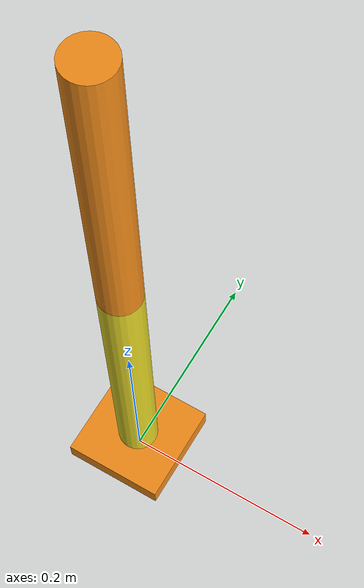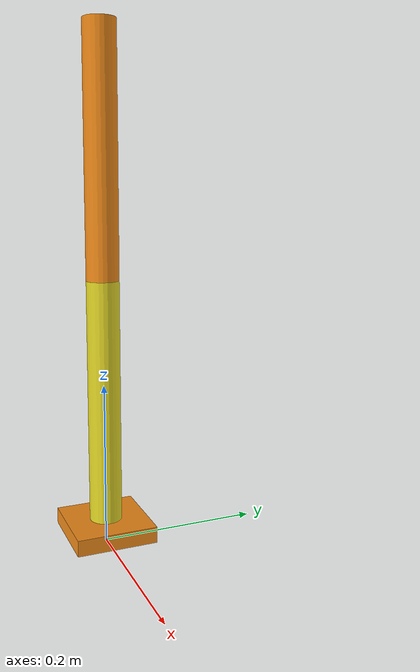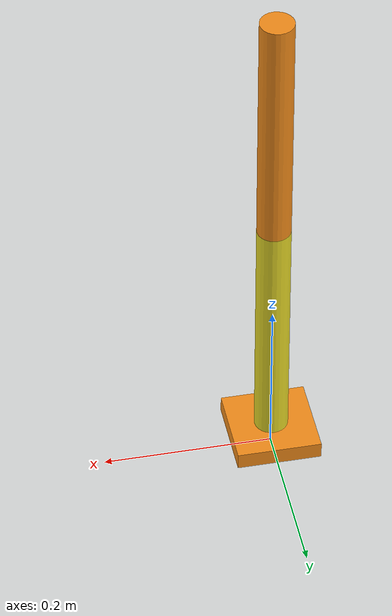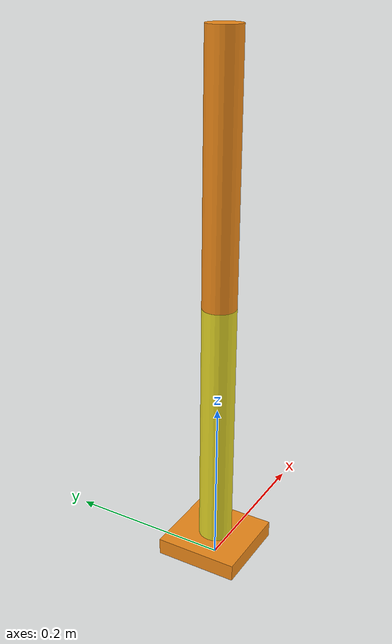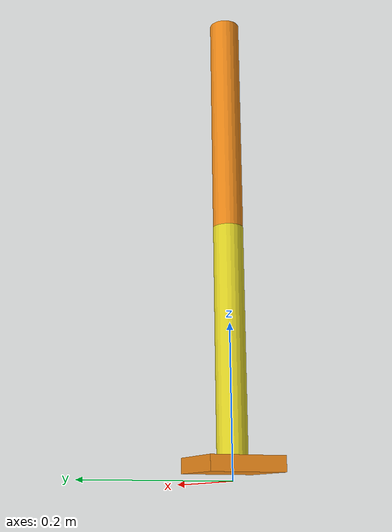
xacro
<?xml version="1.0"?>
<robot name="my_robot" xmlns:xacro="http://www.ros.org/wiki/xacro">

    <xacro:property name="arm_base_length" value="0.1" />
    <xacro:property name="arm_base_width" value="0.1" />
    <xacro:property name="arm_base_height" value="0.02" />
    <xacro:property name="arm_radius" value="0.02" />
    <xacro:property name="arm_length" value="0.3" />

    <link name="arm_base_footprint" />

    <link name="arm_base_link">

        <visual>
            <geometry>
                <box size= "0.1 0.1 0.02" />
            </geometry>
            <origin xyz="0 0 0.01" rpy="0 0 0" />
            <material name="orange" />
        </visual>

        <collision>
            <geometry>
                <box size= "0.1 0.1 0.02" />
            </geometry>
            <origin xyz="0 0 0.01" rpy="0 0 0" />
        </collision>
        <xacro:box_inertia m="5.0" x="${arm_base_length}" y="${arm_base_width}" z="${arm_base_height}"
                           o_xyz="0 0 ${arm_base_height / 2.0}" o_rpy="0 0 0" />
    </link>

    <link name="forearm_link">

        <visual>
            <geometry>
                <cylinder radius="${arm_radius}" length="${arm_length}" />
            </geometry>
            <origin xyz="0 0 ${arm_length/2.0}" rpy="0 0 0" />
            <material name="yellow" />
        </visual>

        <collision>
            <geometry>
                <cylinder radius="${arm_radius}" length="${arm_length}" />
            </geometry>
            <origin xyz="0 0 ${arm_length/2.0}" rpy="0 0 0" />
        </collision>
        <xacro:cylinder_inertia m="0.3" r="${arm_radius}" h="${arm_length}"
                                    o_xyz="0 0 ${arm_length/2.0}" o_rpy="0 0 0" />
    </link>

    <link name="hand_link">
        <visual>
            <geometry>
                <cylinder radius="${arm_radius}" length="${arm_length}" />
            </geometry>
            <origin xyz="0 0 ${arm_length / 2.0}" rpy="0 0 0" />
            <material name="orange" />
        </visual>
        <collision>
            <geometry>
                <cylinder radius="${arm_radius}" length="${arm_length}" />
            </geometry>
            <origin xyz="0 0 ${arm_length/2.0}" rpy="0 0 0" />
        </collision>
        <xacro:cylinder_inertia m="0.3" r="${arm_radius}" h="${arm_length}"
                                    o_xyz="0 0 ${arm_length/2.0}" o_rpy="0 0 0" />
    </link>

    <joint name="arm_base_joint" type="fixed">
        <parent link="arm_base_footprint" />
        <child link="arm_base_link" />
        <origin xyz="0 0 0.01" rpy="0 0 0" />

    </joint>

    <joint name="arm_base_forearm_joint" type="revolute">
        <parent link="arm_base_link" />
        <child link="forearm_link" />
        <origin xyz="0 0 0.02" rpy="0 0 0" />
        <axis xyz="0 1 0" />
        <limit lower="0" upper="${pi/2.0}" effort="100" velocity="100" />
        <dynamics damping="0.3" friction="0.3" />
    </joint>

    <joint name="forearm_hand_joint" type="revolute">
        <parent link="forearm_link" />
        <child link="hand_link" />
        <origin xyz="0 0 ${arm_length}" rpy="0 0 0" />
        <axis xyz="0 1 0" />
        <limit lower="0" upper="${pi/2.0}" effort="100" velocity="100" />
        <dynamics damping="0.3" friction="0.3" />
    </joint>

</robot>
